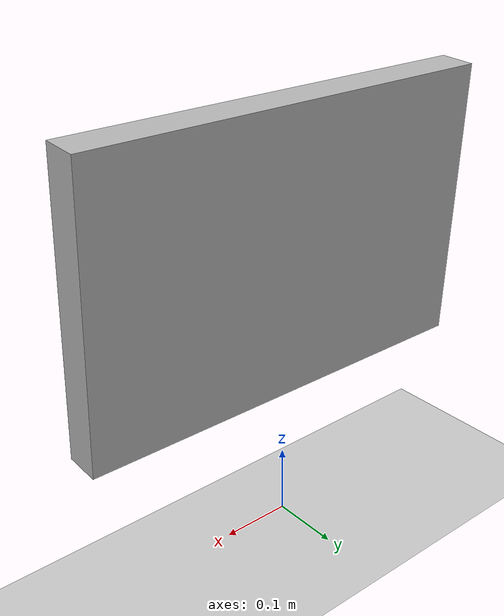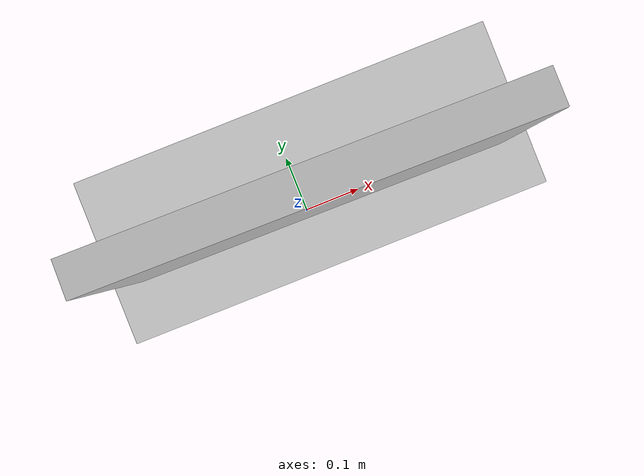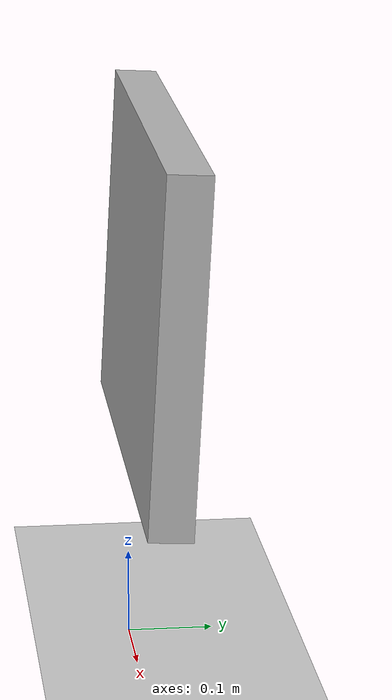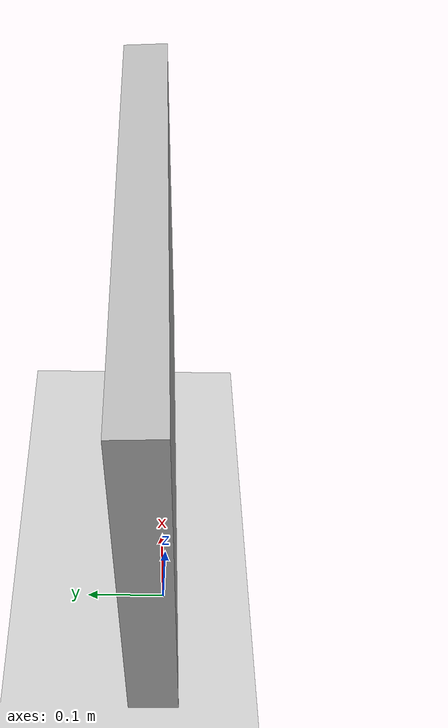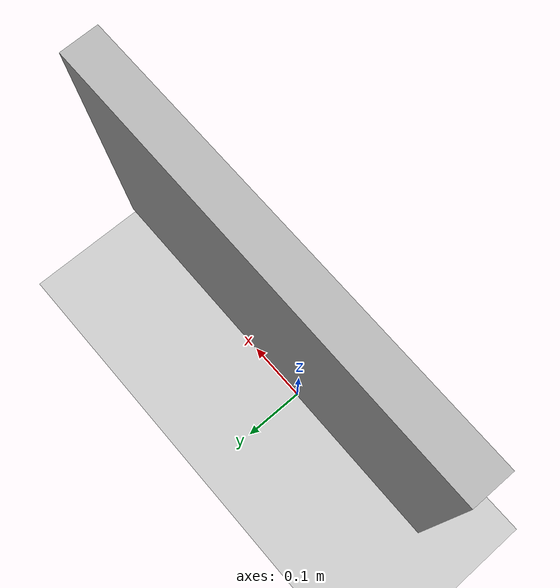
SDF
<sdf version="1.5">
 <world name="default">
  <model name="ground_plane">
   <static>1</static>
   <link name="link">
    <collision name="collision">
     <geometry><plane><normal>0 0 1</normal><size>100 100</size></plane></geometry>
     <surface><friction><ode><mu>100</mu><mu2>50</mu2></ode></friction></surface>
    </collision>
    <visual name="visual">
     <cast_shadows>0</cast_shadows>
     <geometry><plane><normal>0 0 1</normal><size>100 100</size></plane></geometry>
     <material>
      <script><uri>file://media/materials/scripts/gazebo.material</uri><name>Gazebo/Grey</name></script>
     </material>
    </visual>
    <velocity_decay><linear>0</linear><angular>0</angular></velocity_decay>
   </link>
  </model>
  <light name="sun" type="directional">
   <pose>0 0 10 0 -0 0</pose>
   <diffuse>0.8 0.8 0.8 1</diffuse>
   <specular>0.2 0.2 0.2 1</specular>
   <attenuation>
    <range>1000</range>
    <constant>0.9</constant>
    <linear>0.01</linear>
    <quadratic>0.001</quadratic>
   </attenuation>
   <direction>-0.5 0.1 -0.9</direction>
  </light>
  <physics type="ode">
   <max_step_size>0.001</max_step_size>
   <real_time_factor>1</real_time_factor>
   <real_time_update_rate>1000</real_time_update_rate>
   <gravity>0 0 -9.8</gravity>
   <magnetic_field>5.5645e-06 2.28758e-05 -4.23884e-05</magnetic_field>
  </physics>
  <scene><ambient>0.4 0.4 0.4 1</ambient><background>0.7 0.7 0.7 1</background><shadows>1</shadows></scene>
  <spherical_coordinates>
   <surface_model>EARTH_WGS84</surface_model>
   <latitude_deg>0</latitude_deg>
   <longitude_deg>0</longitude_deg>
   <elevation>0</elevation>
   <heading_deg>0</heading_deg>
  </spherical_coordinates>
  <light name="user_point_light_0" type="point">
   <pose>0 -7 5 0 -0 0</pose>
   <diffuse>0.494118 0.494118 0.494118 1</diffuse>
   <specular>0.0941176 0.0941176 0.0941176 1</specular>
   <attenuation>
    <range>20</range>
    <constant>0.5</constant>
    <linear>0.01</linear>
    <quadratic>0.001</quadratic>
   </attenuation>
   <cast_shadows>0</cast_shadows>
   <direction>0 0 -1</direction>
  </light>
  <light name="user_point_light_1" type="point">
   <pose>-5 0 2 0 -0 0</pose>
   <diffuse>0.494118 0.494118 0.494118 1</diffuse>
   <specular>0.0941176 0.0941176 0.0941176 1</specular>
   <attenuation>
    <range>20</range>
    <constant>0.5</constant>
    <linear>0.01</linear>
    <quadratic>0.001</quadratic>
   </attenuation>
   <cast_shadows>0</cast_shadows>
   <direction>0 0 -1</direction>
  </light>
  <light name="user_point_light_2" type="point">
   <pose>0 5 1 0 -0 0</pose>
   <diffuse>0.498039 0.498039 0.498039 1</diffuse>
   <specular>0.0980392 0.0980392 0.0980392 1</specular>
   <attenuation>
    <range>20</range>
    <constant>0.5</constant>
    <linear>0.01</linear>
    <quadratic>0.001</quadratic>
   </attenuation>
   <cast_shadows>0</cast_shadows>
   <direction>0 0 -1</direction>
  </light>
  <model name="panel_art">
   <static>1</static>
   <link name="body">
    <visual name="visual">
     <geometry><box><size>0.4 0.6 0.05</size></box></geometry>
     <material><script><uri>model://panel_art</uri><name>PanelArt/Diffuse</name></script></material>
    </visual>
    <velocity_decay><linear>0</linear><angular>0</angular></velocity_decay>
   </link>
   <pose>0.023556 0.025768 0.427135 -0.070204 -1.51979 1.63203</pose>
  </model>
 </world>
</sdf>
